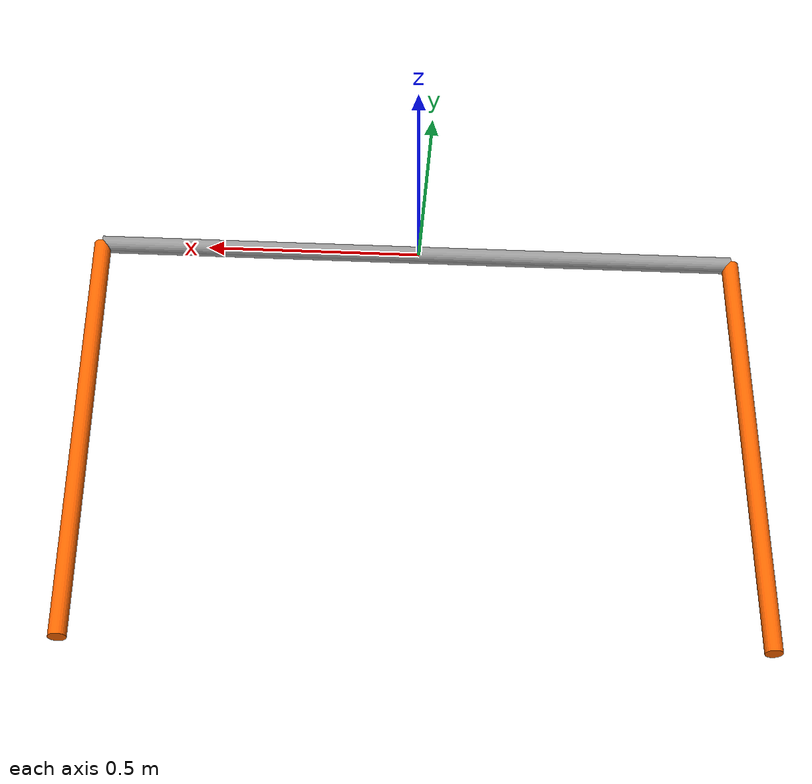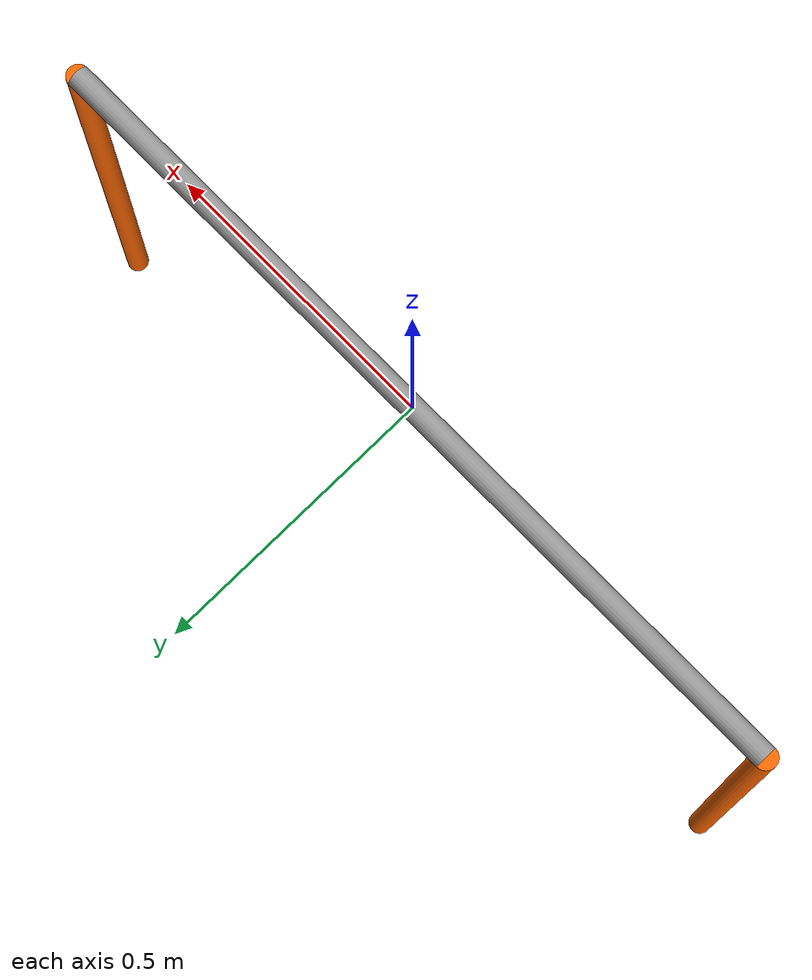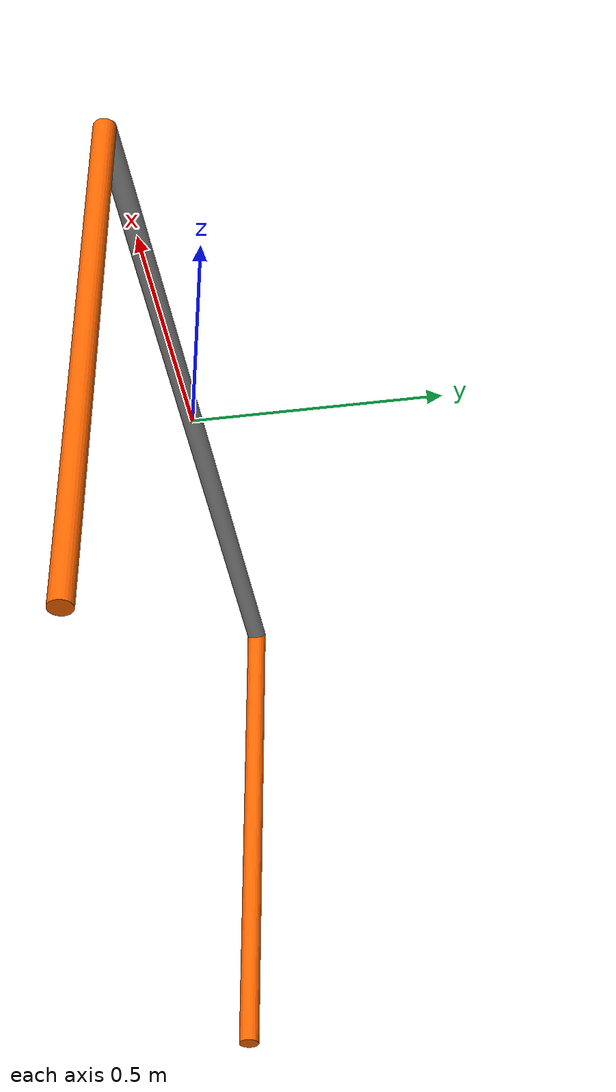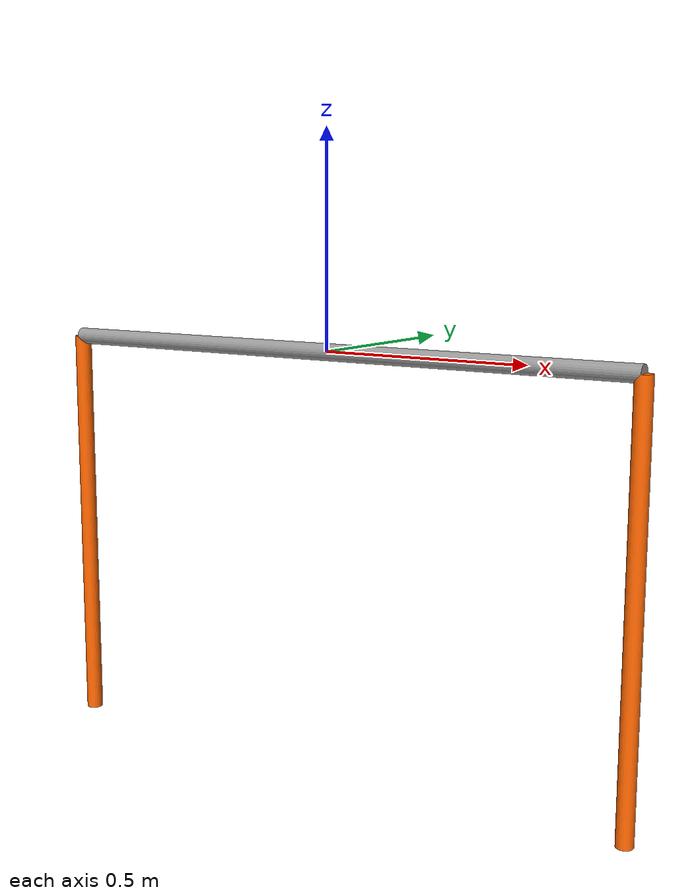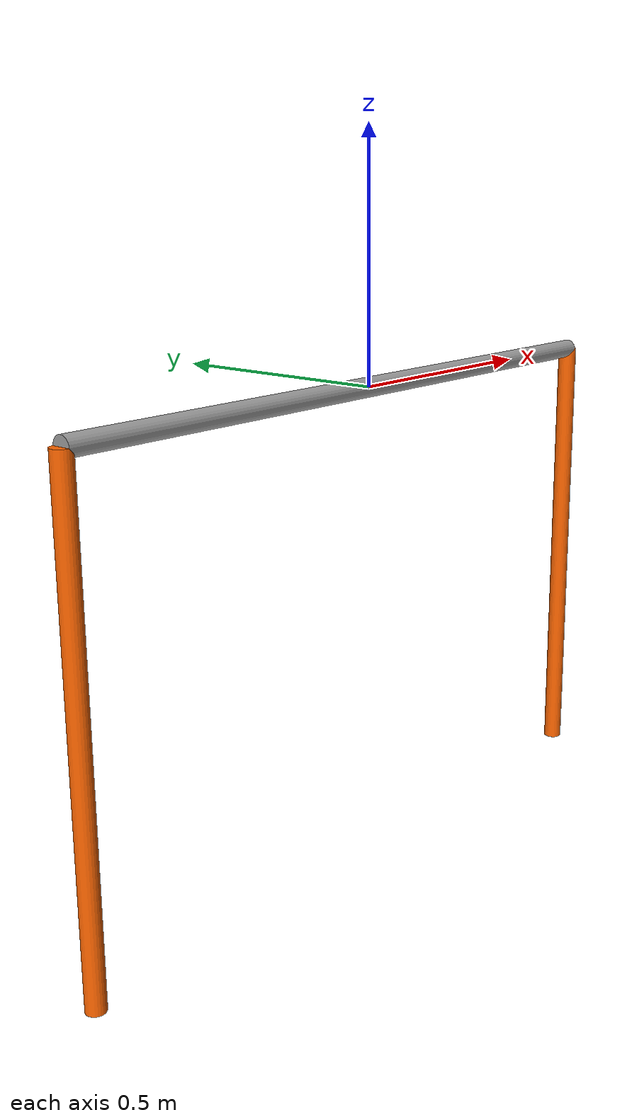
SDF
<?xml version='1.0'?>
<sdf version='1.7'>
  <model name='qualification_gate'>
    <link name='link_2'>
      <inertial>
        <mass>1</mass>
        <inertia>
          <ixx>0.145833</ixx>
          <ixy>0</ixy>
          <ixz>0</ixz>
          <iyy>0.145833</iyy>
          <iyz>0</iyz>
          <izz>0.125</izz>
        </inertia>
        <pose>0 0 0 0 -0 0</pose>
      </inertial>
      <pose>0.75 0 -0.5 0 -0 0</pose>
      <gravity>1</gravity>
      <self_collide>0</self_collide>
      <kinematic>0</kinematic>
      <enable_wind>0</enable_wind>
      <visual name='visual'>
        <pose>0 0 0 0 -0 0</pose>
        <geometry>
          <cylinder>
            <radius>0.02</radius>
            <length>1</length>
          </cylinder>
        </geometry>
        <material>
          <lighting>1</lighting>
          <script>
            <uri>file://media/materials/scripts/gazebo.material</uri>
            <name>Gazebo/Gray</name>
          </script>
          <shader type='pixel'>
            <normal_map>__default__</normal_map>
          </shader>
          <ambient>1 0.4 0 1</ambient>
          <diffuse>0.7 0.7 0.7 1</diffuse>
          <specular>0.01 0.01 0.01 1</specular>
          <emissive>0 0 0 1</emissive>
        </material>
        <transparency>0</transparency>
        <cast_shadows>1</cast_shadows>
      </visual>
      <collision name='collision'>
        <laser_retro>0</laser_retro>
        <max_contacts>10</max_contacts>
        <pose>0 0 0 0 -0 0</pose>
        <geometry>
          <cylinder>
            <radius>0.02</radius>
            <length>1</length>
          </cylinder>
        </geometry>
        <surface>
          <friction>
            <ode>
              <mu>1</mu>
              <mu2>1</mu2>
              <fdir1>0 0 0</fdir1>
              <slip1>0</slip1>
              <slip2>0</slip2>
            </ode>
            <torsional>
              <coefficient>1</coefficient>
              <patch_radius>0</patch_radius>
              <surface_radius>0</surface_radius>
              <use_patch_radius>1</use_patch_radius>
              <ode>
                <slip>0</slip>
              </ode>
            </torsional>
          </friction>
          <bounce>
            <restitution_coefficient>0</restitution_coefficient>
            <threshold>1e+06</threshold>
          </bounce>
          <contact>
            <collide_without_contact>0</collide_without_contact>
            <collide_without_contact_bitmask>1</collide_without_contact_bitmask>
            <collide_bitmask>1</collide_bitmask>
            <ode>
              <soft_cfm>0</soft_cfm>
              <soft_erp>0.2</soft_erp>
              <kp>1e+13</kp>
              <kd>1</kd>
              <max_vel>0.01</max_vel>
              <min_depth>0</min_depth>
            </ode>
            <bullet>
              <split_impulse>1</split_impulse>
              <split_impulse_penetration_threshold>-0.01</split_impulse_penetration_threshold>
              <soft_cfm>0</soft_cfm>
              <soft_erp>0.2</soft_erp>
              <kp>1e+13</kp>
              <kd>1</kd>
            </bullet>
          </contact>
        </surface>
      </collision>
    </link>
    <link name='link_2_clone'>
      <inertial>
        <mass>1</mass>
        <inertia>
          <ixx>0.145833</ixx>
          <ixy>0</ixy>
          <ixz>0</ixz>
          <iyy>0.145833</iyy>
          <iyz>0</iyz>
          <izz>0.125</izz>
        </inertia>
        <pose>0 0 0 0 -0 0</pose>
      </inertial>
      <pose>-0.75 0 -0.5 0 -0 0</pose>
      <gravity>1</gravity>
      <self_collide>0</self_collide>
      <kinematic>0</kinematic>
      <enable_wind>0</enable_wind>
      <visual name='visual'>
        <pose>0 0 0 0 -0 0</pose>
        <geometry>
          <cylinder>
            <radius>0.02</radius>
            <length>1</length>
          </cylinder>
        </geometry>
        <material>
          <lighting>1</lighting>
          <script>
            <uri>file://media/materials/scripts/gazebo.material</uri>
            <name>Gazebo/Grey</name>
          </script>
          <shader type='pixel'>
            <normal_map>__default__</normal_map>
          </shader>
          <ambient>1 0.4 0 1</ambient>
          <diffuse>0.7 0.7 0.7 1</diffuse>
          <specular>0.01 0.01 0.01 1</specular>
          <emissive>0 0 0 1</emissive>
        </material>
        <transparency>0</transparency>
        <cast_shadows>1</cast_shadows>
      </visual>
      <collision name='collision'>
        <laser_retro>0</laser_retro>
        <max_contacts>10</max_contacts>
        <pose>0 0 0 0 -0 0</pose>
        <geometry>
          <cylinder>
            <radius>0.02</radius>
            <length>1</length>
          </cylinder>
        </geometry>
        <surface>
          <friction>
            <ode>
              <mu>1</mu>
              <mu2>1</mu2>
              <fdir1>0 0 0</fdir1>
              <slip1>0</slip1>
              <slip2>0</slip2>
            </ode>
            <torsional>
              <coefficient>1</coefficient>
              <patch_radius>0</patch_radius>
              <surface_radius>0</surface_radius>
              <use_patch_radius>1</use_patch_radius>
              <ode>
                <slip>0</slip>
              </ode>
            </torsional>
          </friction>
          <bounce>
            <restitution_coefficient>0</restitution_coefficient>
            <threshold>1e+06</threshold>
          </bounce>
          <contact>
            <collide_without_contact>0</collide_without_contact>
            <collide_without_contact_bitmask>1</collide_without_contact_bitmask>
            <collide_bitmask>1</collide_bitmask>
            <ode>
              <soft_cfm>0</soft_cfm>
              <soft_erp>0.2</soft_erp>
              <kp>1e+13</kp>
              <kd>1</kd>
              <max_vel>0.01</max_vel>
              <min_depth>0</min_depth>
            </ode>
            <bullet>
              <split_impulse>1</split_impulse>
              <split_impulse_penetration_threshold>-0.01</split_impulse_penetration_threshold>
              <soft_cfm>0</soft_cfm>
              <soft_erp>0.2</soft_erp>
              <kp>1e+13</kp>
              <kd>1</kd>
            </bullet>
          </contact>
        </surface>
      </collision>
    </link>
    <link name='link_4'>
      <inertial>
        <mass>1</mass>
        <inertia>
          <ixx>0.145833</ixx>
          <ixy>0</ixy>
          <ixz>0</ixz>
          <iyy>0.145833</iyy>
          <iyz>0</iyz>
          <izz>0.125</izz>
        </inertia>
        <pose>0 0 0 0 -0 0</pose>
      </inertial>
      <pose>0 0 0 0 1.57079 0</pose>
      <gravity>1</gravity>
      <self_collide>0</self_collide>
      <kinematic>0</kinematic>
      <enable_wind>0</enable_wind>
      <visual name='visual'>
        <pose>0 0 0 0 -0 0</pose>
        <geometry>
          <cylinder>
            <radius>0.02</radius>
            <length>1.5</length>
          </cylinder>
        </geometry>
        <material>
          <lighting>1</lighting>
          <script>
            <uri>file://media/materials/scripts/gazebo.material</uri>
            <name>Gazebo/Gray</name>
          </script>
          <shader type='pixel'>
            <normal_map>__default__</normal_map>
          </shader>
          <ambient>1 1 1 1</ambient>
          <diffuse>0.7 0.7 0.7 1</diffuse>
          <specular>0.01 0.01 0.01 1</specular>
          <emissive>0 0 0 1</emissive>
        </material>
        <transparency>0</transparency>
        <cast_shadows>1</cast_shadows>
      </visual>
      <collision name='collision'>
        <laser_retro>0</laser_retro>
        <max_contacts>10</max_contacts>
        <pose>0 0 0 0 -0 0</pose>
        <geometry>
          <cylinder>
            <radius>0.02</radius>
            <length>1.5</length>
          </cylinder>
        </geometry>
        <surface>
          <friction>
            <ode>
              <mu>1</mu>
              <mu2>1</mu2>
              <fdir1>0 0 0</fdir1>
              <slip1>0</slip1>
              <slip2>0</slip2>
            </ode>
            <torsional>
              <coefficient>1</coefficient>
              <patch_radius>0</patch_radius>
              <surface_radius>0</surface_radius>
              <use_patch_radius>1</use_patch_radius>
              <ode>
                <slip>0</slip>
              </ode>
            </torsional>
          </friction>
          <bounce>
            <restitution_coefficient>0</restitution_coefficient>
            <threshold>1e+06</threshold>
          </bounce>
          <contact>
            <collide_without_contact>0</collide_without_contact>
            <collide_without_contact_bitmask>1</collide_without_contact_bitmask>
            <collide_bitmask>1</collide_bitmask>
            <ode>
              <soft_cfm>0</soft_cfm>
              <soft_erp>0.2</soft_erp>
              <kp>1e+13</kp>
              <kd>1</kd>
              <max_vel>0.01</max_vel>
              <min_depth>0</min_depth>
            </ode>
            <bullet>
              <split_impulse>1</split_impulse>
              <split_impulse_penetration_threshold>-0.01</split_impulse_penetration_threshold>
              <soft_cfm>0</soft_cfm>
              <soft_erp>0.2</soft_erp>
              <kp>1e+13</kp>
              <kd>1</kd>
            </bullet>
          </contact>
        </surface>
      </collision>
    </link>
    <static>1</static>
    <allow_auto_disable>1</allow_auto_disable>
  </model>
</sdf>
